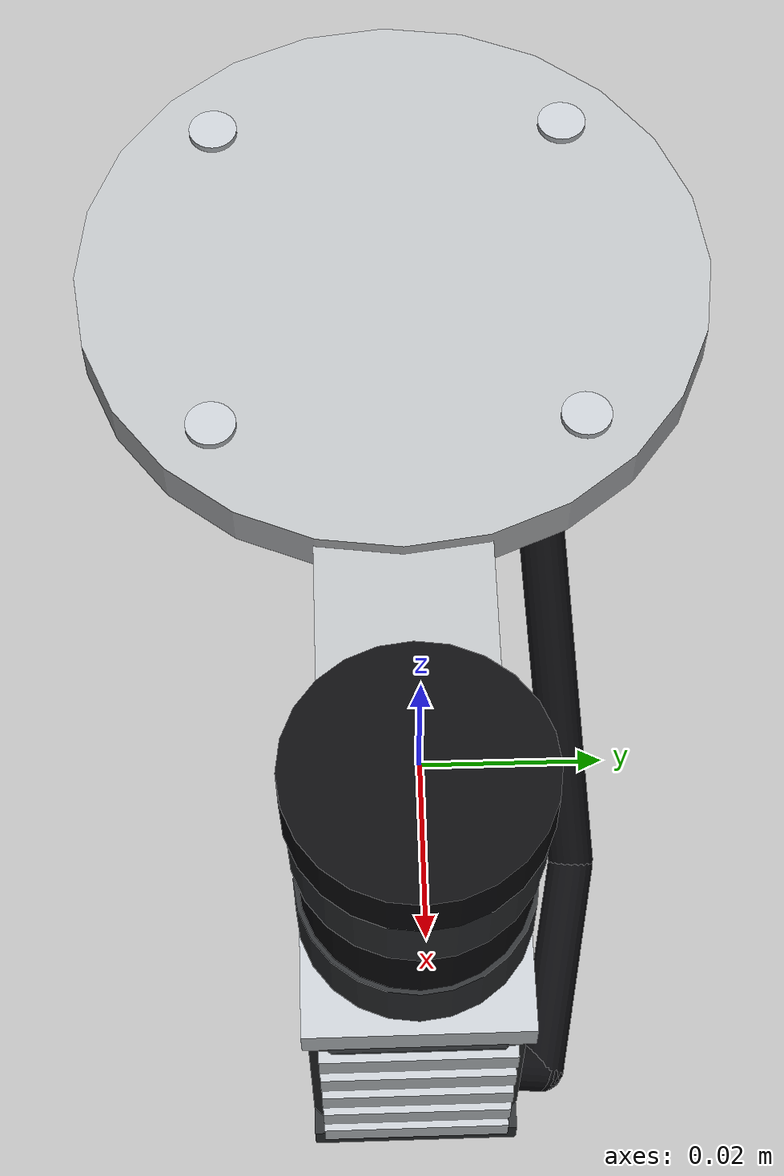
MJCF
<?xml version="1.0" encoding="utf-8"?>
<!-- Generated by scripts/generate_wrist_camera.py; do not edit by hand. -->
<mujoco model="wrist_camera">
<asset>
<material name="panel" rgba="0.93 0.93 0.91 1" specular="0.35" shininess="0.5"/>
<material name="panel_joint" rgba="0.74 0.75 0.75 1"/>
<material name="floor" rgba="0.80 0.81 0.81 1" specular="0.3" shininess="0.6" reflectance="0.12"/>
<material name="ceiling" rgba="0.95 0.95 0.94 1" specular="0.05" emission="0.45"/>
<material name="led" rgba="0.98 0.99 1.0 1" emission="1"/>
<material name="grille" rgba="0.55 0.57 0.58 1"/>
<material name="worktop" rgba="0.95 0.95 0.94 1" specular="0.8" shininess="0.9" reflectance="0.3"/>
<material name="white" rgba="0.94 0.94 0.93 1" specular="0.3" shininess="0.4"/>
<material name="white_matte" rgba="0.92 0.92 0.91 1" specular="0.1"/>
<material name="shelf" rgba="0.95 0.95 0.95 1" specular="0.4" shininess="0.5"/>
<material name="seam" rgba="0.80 0.81 0.81 1"/>
<material name="amber" rgba="0.55 0.24 0.04 0.82" specular="0.9" shininess="0.95"/>
<material name="sample_hdpe" rgba="0.92 0.92 0.91 1" specular="0.25" shininess="0.4"/>
<material name="sample_cap" rgba="0.93 0.93 0.91 1" specular="0.3" shininess="0.5"/>
<material name="glass" rgba="0.80 0.90 0.95 0.15" specular="0.9" shininess="0.95" reflectance="0.1"/>
<material name="glass_clear" rgba="0.88 0.94 0.97 0.30" specular="0.9" shininess="0.95"/>
<material name="frosted" rgba="0.96 0.97 0.98 0.75"/>
<material name="aluminium" rgba="0.76 0.78 0.80 1" specular="0.7" shininess="0.7"/>
<material name="steel" rgba="0.72 0.73 0.74 1" specular="0.8" shininess="0.6"/>
<material name="black" rgba="0.05 0.05 0.06 1" specular="0.9" shininess="0.9"/>
<material name="dark" rgba="0.18 0.19 0.20 1"/>
<material name="grey_device" rgba="0.80 0.81 0.80 1" specular="0.3"/>
<material name="screen" rgba="0.10 0.16 0.22 1" emission="0.25"/>
<material name="orange" rgba="0.93 0.40 0.10 1"/>
<material name="blue_hdpe" rgba="0.05 0.28 0.72 1" specular="0.15"/>
<material name="blue_motor" rgba="0.10 0.30 0.70 1" specular="0.5"/>
<material name="stripe_blue" rgba="0.10 0.35 0.75 1"/>
<material name="cream" rgba="0.93 0.91 0.84 1" specular="0.3"/>
<material name="hdpe_white" rgba="0.93 0.93 0.90 0.85" specular="0.2"/>
<material name="kraft" rgba="0.60 0.45 0.28 1" specular="0.05"/>
<material name="tape" rgba="0.65 0.48 0.28 1" specular="0.3" shininess="0.2"/>
<material name="cardboard" rgba="0.72 0.58 0.40 1" specular="0.05"/>
<material name="red_rack" rgba="0.75 0.10 0.08 1" specular="0.3"/>
<material name="navy_rack" rgba="0.10 0.14 0.32 1" specular="0.3"/>
<material name="galvanised" rgba="0.68 0.70 0.71 1" specular="0.5"/>
<material name="foil" rgba="0.80 0.80 0.82 1" specular="1" shininess="1"/>
<material name="paper" rgba="0.98 0.98 0.97 1"/>
<material name="bag" rgba="0.95 0.95 0.93 0.55"/>
<material name="red_cap" rgba="0.80 0.10 0.10 1"/>
<material name="coat" rgba="0.95 0.96 0.97 1"/>
<material name="skin" rgba="0.80 0.64 0.52 1"/>
<material name="cap_blue" rgba="0.55 0.72 0.90 1"/>
<material name="trousers" rgba="0.20 0.22 0.28 1"/>
<material name="desk" rgba="0.86 0.84 0.80 1"/>
<mesh name="bevel_0" vertex="-0.0145 -0.0113 -0.0178 -0.0145 -0.0113 0.0178 -0.0145 0.0113 -0.0178 -0.0145 0.0113 0.0178 0.0145 -0.0113 -0.0178 0.0145 -0.0113 0.0178 0.0145 0.0113 -0.0178 0.0145 0.0113 0.0178 -0.0113 -0.0145 -0.0178 -0.0113 -0.0145 0.0178 -0.0113 0.0145 -0.0178 -0.0113 0.0145 0.0178 0.0113 -0.0145 -0.0178 0.0113 -0.0145 0.0178 0.0113 0.0145 -0.0178 0.0113 0.0145 0.0178 -0.0113 -0.0113 -0.021 -0.0113 -0.0113 0.021 -0.0113 0.0113 -0.021 -0.0113 0.0113 0.021 0.0113 -0.0113 -0.021 0.0113 -0.0113 0.021 0.0113 0.0113 -0.021 0.0113 0.0113 0.021"/>
</asset>
<worldbody>
<body name="wrist_camera">

      <!-- C-mount lens; the hood stops 1 mm short of the origin so that no part of the camera can reach into its own frame -->
      <geom name="lens_hood_0" type="cylinder" pos="0 0 -0.005" size="0.016 0.004" material="black" group="1"/>
      <geom name="lens_glass_0" type="cylinder" pos="0 0 -0.0085" size="0.0138 0.0005" material="glass_clear" contype="0" conaffinity="0" group="1"/>
      <geom name="lens_focus_ring_0" type="cylinder" pos="0 0 -0.014" size="0.0155 0.006" material="dark" contype="0" conaffinity="0" group="1"/>
      <geom name="lens_barrel_0" type="cylinder" pos="0 0 -0.028" size="0.0146 0.009" material="black" group="1"/>
      <geom name="lens_aperture_ring_0" type="cylinder" pos="0 0 -0.038" size="0.0152 0.005" material="dark" contype="0" conaffinity="0" group="1"/>
      <geom name="lens_mount_0" type="cylinder" pos="0 0 -0.046" size="0.0125 0.004" material="aluminium" contype="0" conaffinity="0" group="1"/>

      <!-- Camera body, behind the lens -->
      <geom name="cam_front_plate_0" type="box" size="0.015 0.015 0.0025" pos="0 0 -0.0515" material="aluminium" group="1"/>
      <geom type="box" pos="0 0 -0.075" size="0.0145 0.0145 0.021" group="3" rgba="0 0 0 0"/>
      <geom name="cam_body_0" type="mesh" mesh="bevel_0" pos="0 0 -0.075" material="dark" contype="0" conaffinity="0" group="1"/>
      <geom name="cam_rib_0" type="box" size="0.0008 0.013 0.0022" pos="0.0148 0 -0.06" material="aluminium" contype="0" conaffinity="0" group="1"/>
      <geom name="cam_rib_1" type="box" size="0.0008 0.013 0.0022" pos="0.0148 0 -0.068" material="aluminium" contype="0" conaffinity="0" group="1"/>
      <geom name="cam_rib_2" type="box" size="0.0008 0.013 0.0022" pos="0.0148 0 -0.076" material="aluminium" contype="0" conaffinity="0" group="1"/>
      <geom name="cam_rib_3" type="box" size="0.0008 0.013 0.0022" pos="0.0148 0 -0.084" material="aluminium" contype="0" conaffinity="0" group="1"/>
      <geom name="cam_rib_4" type="box" size="0.0008 0.013 0.0022" pos="0.0148 0 -0.092" material="aluminium" contype="0" conaffinity="0" group="1"/>
      <geom name="cam_back_0" type="box" size="0.0145 0.0145 0.0025" pos="0 0 -0.0975" material="dark" group="1"/>

      <!-- Connectors and status light -->
      <geom name="cam_rj45_0" type="box" size="0.0075 0.006 0.005" pos="0 0.006 -0.1045" material="black" contype="0" conaffinity="0" group="1"/>
      <geom name="cam_io_0" type="cylinder" pos="0 -0.008 -0.1035" size="0.0055 0.004" material="aluminium" contype="0" conaffinity="0" group="1"/>
      <geom name="cam_led_0" type="ellipsoid" pos="-0.0085 0.0148 -0.0635" size="0.0018 0.0006 0.0018" material="led" contype="0" conaffinity="0" group="1"/>

      <!-- Cable, dressed back along the bracket toward the wrist -->
      <geom name="cam_cable_0" type="capsule" fromto="0 0.006 -0.1105 0 0.02 -0.115" size="0.0035" material="black" contype="0" conaffinity="0" group="1"/>
      <geom name="cam_cable_1" type="capsule" fromto="0 0.02 -0.115 -0.03 0.026 -0.105" size="0.0035" material="black" contype="0" conaffinity="0" group="1"/>
      <geom name="cam_cable_2" type="capsule" fromto="-0.03 0.026 -0.105 -0.07 0.022 -0.07" size="0.0035" material="black" contype="0" conaffinity="0" group="1"/>
      <geom name="cam_cable_3" type="capsule" fromto="-0.07 0.022 -0.07 -0.09 0.016 -0.05" size="0.0035" material="black" contype="0" conaffinity="0" group="1"/>

      <!-- Adapter plate at the flange, under the gripper -->
      <geom name="bracket_plate_0" type="cylinder" pos="-0.09 0 -0.0335" size="0.045 0.0035" material="steel" group="1"/>
      <geom name="bracket_bolt_0" type="cylinder" pos="-0.0645 0.0255 -0.0325" size="0.0035 0.0035" material="aluminium" contype="0" conaffinity="0" group="1"/>
      <geom name="bracket_bolt_1" type="cylinder" pos="-0.1155 0.0255 -0.0325" size="0.0035 0.0035" material="aluminium" contype="0" conaffinity="0" group="1"/>
      <geom name="bracket_bolt_2" type="cylinder" pos="-0.1155 -0.0255 -0.0325" size="0.0035 0.0035" material="aluminium" contype="0" conaffinity="0" group="1"/>
      <geom name="bracket_bolt_3" type="cylinder" pos="-0.0645 -0.0255 -0.0325" size="0.0035 0.0035" material="aluminium" contype="0" conaffinity="0" group="1"/>

      <!-- Arm from the plate out to the camera, and the riser it bolts to -->
      <geom name="bracket_arm_0" type="box" size="0.0172 0.012 0.0145" pos="-0.0328 0 -0.0465" material="steel" group="1"/>
      <geom name="bracket_riser_0" type="box" size="0.0025 0.014 0.024" pos="-0.0175 0 -0.078" material="steel" group="1"/>
      <geom name="bracket_gusset_0" type="box" size="0.008 0.01 0.0025" pos="-0.0235 0 -0.064" material="steel" contype="0" conaffinity="0" group="1"/>
</body>
</worldbody>
</mujoco>
